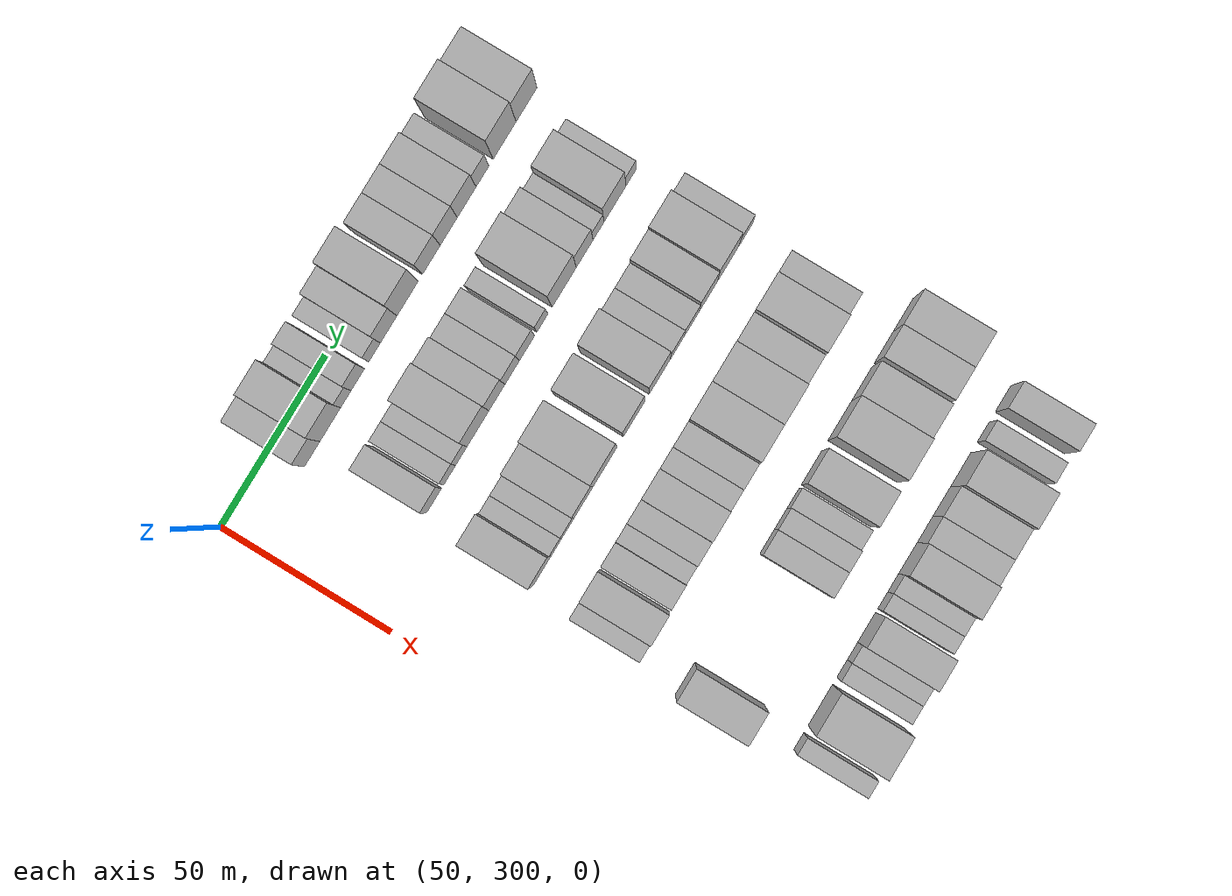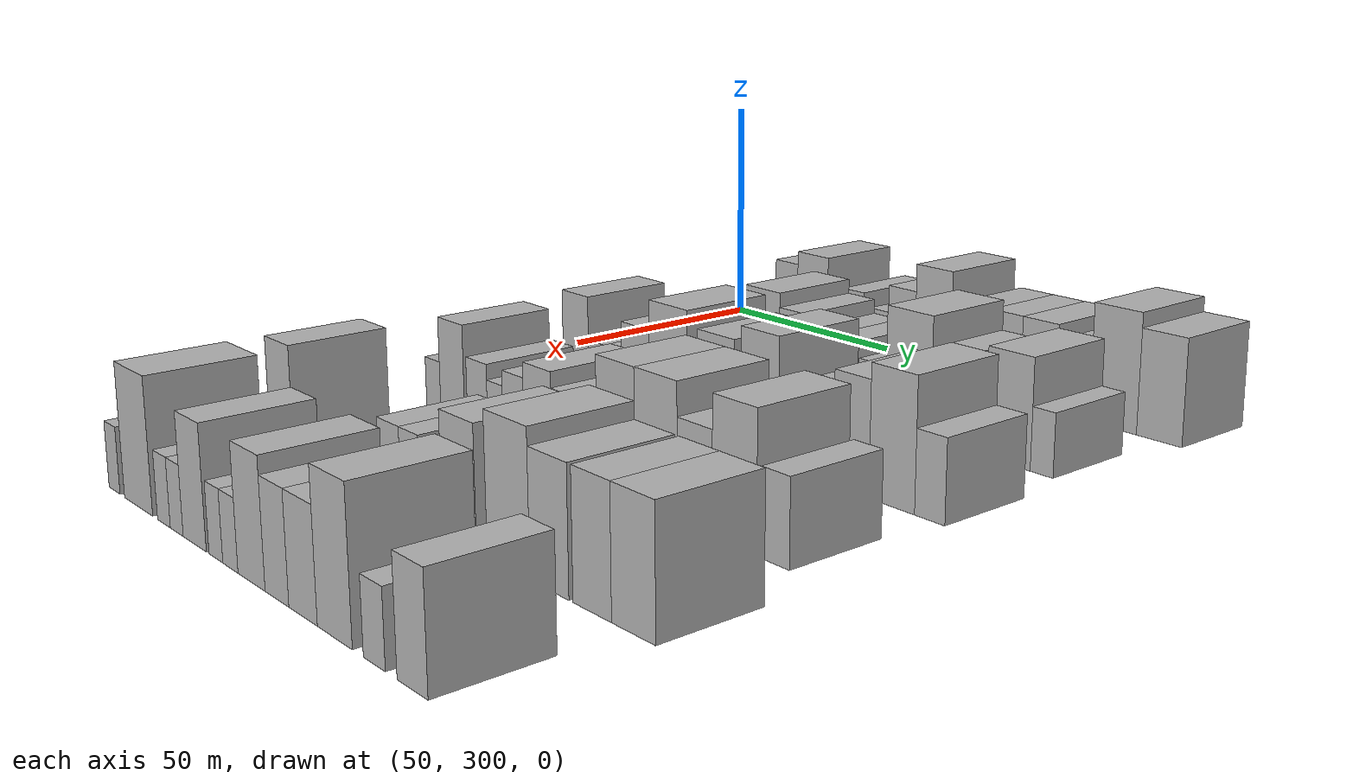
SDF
<sdf version="1.6">
 <world name="default">
  <model name="building_94">
   <static>1</static>
   <pose>50.0000 327.3562 0 0.000000 0.000000 0.000000</pose>
   <link name="link">
    <pose>0 0 9.00 0 0 0</pose>
    <collision name="collision"><geometry><box><size>20.0000 7.3040 18.0000</size></box></geometry></collision>
    <visual name="visual">
     <cast_shadows>0</cast_shadows>
     <geometry><box><size>20.0000 7.3040 18.0000</size></box></geometry>
     <material>
      <script>
       <uri>model://HANNAS_wall/materials/scripts</uri>
       <uri>model://HANNAS_wall/materials/textures</uri>
       <name>vrc/HANNAS_wall</name>
      </script>
     </material>
    </visual>
   </link>
  </model>
  <model name="building_95">
   <static>1</static>
   <pose>50.0000 335.9351 0 0.000000 0.000000 0.000000</pose>
   <link name="link">
    <pose>0 0 10.50 0 0 0</pose>
    <collision name="collision"><geometry><box><size>20.0000 9.8539 21.0000</size></box></geometry></collision>
    <visual name="visual">
     <cast_shadows>0</cast_shadows>
     <geometry><box><size>20.0000 9.8539 21.0000</size></box></geometry>
     <material>
      <script>
       <uri>model://HANNAS_wall/materials/scripts</uri>
       <uri>model://HANNAS_wall/materials/textures</uri>
       <name>vrc/HANNAS_wall</name>
      </script>
     </material>
    </visual>
   </link>
  </model>
  <model name="building_96">
   <static>1</static>
   <pose>50.0000 343.3470 0 0.000000 0.000000 0.000000</pose>
   <link name="link">
    <pose>0 0 6.00 0 0 0</pose>
    <collision name="collision"><geometry><box><size>20.0000 4.9699 12.0000</size></box></geometry></collision>
    <visual name="visual">
     <cast_shadows>0</cast_shadows>
     <geometry><box><size>20.0000 4.9699 12.0000</size></box></geometry>
     <material>
      <script>
       <uri>model://HANNAS_wall/materials/scripts</uri>
       <uri>model://HANNAS_wall/materials/textures</uri>
       <name>vrc/HANNAS_wall</name>
      </script>
     </material>
    </visual>
   </link>
  </model>
  <model name="building_97">
   <static>1</static>
   <pose>50.0000 349.0297 0 0.000000 0.000000 0.000000</pose>
   <link name="link">
    <pose>0 0 7.50 0 0 0</pose>
    <collision name="collision"><geometry><box><size>20.0000 6.3954 15.0000</size></box></geometry></collision>
    <visual name="visual">
     <cast_shadows>0</cast_shadows>
     <geometry><box><size>20.0000 6.3954 15.0000</size></box></geometry>
     <material>
      <script>
       <uri>model://HANNAS_wall/materials/scripts</uri>
       <uri>model://HANNAS_wall/materials/textures</uri>
       <name>vrc/HANNAS_wall</name>
      </script>
     </material>
    </visual>
   </link>
  </model>
  <model name="building_98">
   <static>1</static>
   <pose>50.0000 356.9638 0 0.000000 0.000000 0.000000</pose>
   <link name="link">
    <pose>0 0 6.00 0 0 0</pose>
    <collision name="collision"><geometry><box><size>20.0000 5.4728 12.0000</size></box></geometry></collision>
    <visual name="visual">
     <cast_shadows>0</cast_shadows>
     <geometry><box><size>20.0000 5.4728 12.0000</size></box></geometry>
     <material>
      <script>
       <uri>model://HANNAS_wall/materials/scripts</uri>
       <uri>model://HANNAS_wall/materials/textures</uri>
       <name>vrc/HANNAS_wall</name>
      </script>
     </material>
    </visual>
   </link>
  </model>
  <model name="building_99">
   <static>1</static>
   <pose>50.0000 363.6800 0 0.000000 0.000000 0.000000</pose>
   <link name="link">
    <pose>0 0 9.00 0 0 0</pose>
    <collision name="collision"><geometry><box><size>20.0000 7.9595 18.0000</size></box></geometry></collision>
    <visual name="visual">
     <cast_shadows>0</cast_shadows>
     <geometry><box><size>20.0000 7.9595 18.0000</size></box></geometry>
     <material>
      <script>
       <uri>model://HANNAS_wall/materials/scripts</uri>
       <uri>model://HANNAS_wall/materials/textures</uri>
       <name>vrc/HANNAS_wall</name>
      </script>
     </material>
    </visual>
   </link>
  </model>
  <model name="building_100">
   <static>1</static>
   <pose>50.0000 372.7301 0 0.000000 0.000000 0.000000</pose>
   <link name="link">
    <pose>0 0 12.00 0 0 0</pose>
    <collision name="collision"><geometry><box><size>20.0000 10.1408 24.0000</size></box></geometry></collision>
    <visual name="visual">
     <cast_shadows>0</cast_shadows>
     <geometry><box><size>20.0000 10.1408 24.0000</size></box></geometry>
     <material>
      <script>
       <uri>model://HANNAS_wall/materials/scripts</uri>
       <uri>model://HANNAS_wall/materials/textures</uri>
       <name>vrc/HANNAS_wall</name>
      </script>
     </material>
    </visual>
   </link>
  </model>
  <model name="building_101">
   <static>1</static>
   <pose>50.0000 384.0798 0 0.000000 0.000000 0.000000</pose>
   <link name="link">
    <pose>0 0 9.00 0 0 0</pose>
    <collision name="collision"><geometry><box><size>20.0000 8.5584 18.0000</size></box></geometry></collision>
    <visual name="visual">
     <cast_shadows>0</cast_shadows>
     <geometry><box><size>20.0000 8.5584 18.0000</size></box></geometry>
     <material>
      <script>
       <uri>model://HANNAS_wall/materials/scripts</uri>
       <uri>model://HANNAS_wall/materials/textures</uri>
       <name>vrc/HANNAS_wall</name>
      </script>
     </material>
    </visual>
   </link>
  </model>
  <model name="building_102">
   <static>1</static>
   <pose>50.0000 392.4596 0 0.000000 0.000000 0.000000</pose>
   <link name="link">
    <pose>0 0 9.00 0 0 0</pose>
    <collision name="collision"><geometry><box><size>20.0000 8.2013 18.0000</size></box></geometry></collision>
    <visual name="visual">
     <cast_shadows>0</cast_shadows>
     <geometry><box><size>20.0000 8.2013 18.0000</size></box></geometry>
     <material>
      <script>
       <uri>model://HANNAS_wall/materials/scripts</uri>
       <uri>model://HANNAS_wall/materials/textures</uri>
       <name>vrc/HANNAS_wall</name>
      </script>
     </material>
    </visual>
   </link>
  </model>
  <model name="building_103">
   <static>1</static>
   <pose>50.0000 401.0458 0 0.000000 0.000000 0.000000</pose>
   <link name="link">
    <pose>0 0 9.00 0 0 0</pose>
    <collision name="collision"><geometry><box><size>20.0000 8.9710 18.0000</size></box></geometry></collision>
    <visual name="visual">
     <cast_shadows>0</cast_shadows>
     <geometry><box><size>20.0000 8.9710 18.0000</size></box></geometry>
     <material>
      <script>
       <uri>model://HANNAS_wall/materials/scripts</uri>
       <uri>model://HANNAS_wall/materials/textures</uri>
       <name>vrc/HANNAS_wall</name>
      </script>
     </material>
    </visual>
   </link>
  </model>
  <model name="building_104">
   <static>1</static>
   <pose>50.0000 408.6296 0 0.000000 0.000000 0.000000</pose>
   <link name="link">
    <pose>0 0 7.50 0 0 0</pose>
    <collision name="collision"><geometry><box><size>20.0000 6.1966 15.0000</size></box></geometry></collision>
    <visual name="visual">
     <cast_shadows>0</cast_shadows>
     <geometry><box><size>20.0000 6.1966 15.0000</size></box></geometry>
     <material>
      <script>
       <uri>model://HANNAS_wall/materials/scripts</uri>
       <uri>model://HANNAS_wall/materials/textures</uri>
       <name>vrc/HANNAS_wall</name>
      </script>
     </material>
    </visual>
   </link>
  </model>
  <model name="building_105">
   <static>1</static>
   <pose>50.0000 419.2342 0 0.000000 0.000000 0.000000</pose>
   <link name="link">
    <pose>0 0 12.00 0 0 0</pose>
    <collision name="collision"><geometry><box><size>20.0000 11.0126 24.0000</size></box></geometry></collision>
    <visual name="visual">
     <cast_shadows>0</cast_shadows>
     <geometry><box><size>20.0000 11.0126 24.0000</size></box></geometry>
     <material>
      <script>
       <uri>model://HANNAS_wall/materials/scripts</uri>
       <uri>model://HANNAS_wall/materials/textures</uri>
       <name>vrc/HANNAS_wall</name>
      </script>
     </material>
    </visual>
   </link>
  </model>
  <model name="building_106">
   <static>1</static>
   <pose>50.0000 429.7818 0 0.000000 0.000000 0.000000</pose>
   <link name="link">
    <pose>0 0 10.50 0 0 0</pose>
    <collision name="collision"><geometry><box><size>20.0000 10.0826 21.0000</size></box></geometry></collision>
    <visual name="visual">
     <cast_shadows>0</cast_shadows>
     <geometry><box><size>20.0000 10.0826 21.0000</size></box></geometry>
     <material>
      <script>
       <uri>model://HANNAS_wall/materials/scripts</uri>
       <uri>model://HANNAS_wall/materials/textures</uri>
       <name>vrc/HANNAS_wall</name>
      </script>
     </material>
    </visual>
   </link>
  </model>
  <model name="building_215">
   <static>1</static>
   <pose>82.0000 333.2062 0 0.000000 0.000000 0.000000</pose>
   <link name="link">
    <pose>0 0 7.50 0 0 0</pose>
    <collision name="collision"><geometry><box><size>20.0000 7.2436 15.0000</size></box></geometry></collision>
    <visual name="visual">
     <cast_shadows>0</cast_shadows>
     <geometry><box><size>20.0000 7.2436 15.0000</size></box></geometry>
     <material>
      <script>
       <uri>model://HANNAS_wall/materials/scripts</uri>
       <uri>model://HANNAS_wall/materials/textures</uri>
       <name>vrc/HANNAS_wall</name>
      </script>
     </material>
    </visual>
   </link>
  </model>
  <model name="building_216">
   <static>1</static>
   <pose>82.0000 340.6351 0 0.000000 0.000000 0.000000</pose>
   <link name="link">
    <pose>0 0 6.00 0 0 0</pose>
    <collision name="collision"><geometry><box><size>20.0000 5.6140 12.0000</size></box></geometry></collision>
    <visual name="visual">
     <cast_shadows>0</cast_shadows>
     <geometry><box><size>20.0000 5.6140 12.0000</size></box></geometry>
     <material>
      <script>
       <uri>model://HANNAS_wall/materials/scripts</uri>
       <uri>model://HANNAS_wall/materials/textures</uri>
       <name>vrc/HANNAS_wall</name>
      </script>
     </material>
    </visual>
   </link>
  </model>
  <model name="building_217">
   <static>1</static>
   <pose>82.0000 346.1693 0 0.000000 0.000000 0.000000</pose>
   <link name="link">
    <pose>0 0 6.00 0 0 0</pose>
    <collision name="collision"><geometry><box><size>20.0000 5.4545 12.0000</size></box></geometry></collision>
    <visual name="visual">
     <cast_shadows>0</cast_shadows>
     <geometry><box><size>20.0000 5.4545 12.0000</size></box></geometry>
     <material>
      <script>
       <uri>model://HANNAS_wall/materials/scripts</uri>
       <uri>model://HANNAS_wall/materials/textures</uri>
       <name>vrc/HANNAS_wall</name>
      </script>
     </material>
    </visual>
   </link>
  </model>
  <model name="building_218">
   <static>1</static>
   <pose>82.0000 354.1108 0 0.000000 0.000000 0.000000</pose>
   <link name="link">
    <pose>0 0 10.50 0 0 0</pose>
    <collision name="collision"><geometry><box><size>20.0000 10.4285 21.0000</size></box></geometry></collision>
    <visual name="visual">
     <cast_shadows>0</cast_shadows>
     <geometry><box><size>20.0000 10.4285 21.0000</size></box></geometry>
     <material>
      <script>
       <uri>model://HANNAS_wall/materials/scripts</uri>
       <uri>model://HANNAS_wall/materials/textures</uri>
       <name>vrc/HANNAS_wall</name>
      </script>
     </material>
    </visual>
   </link>
  </model>
  <model name="building_219">
   <static>1</static>
   <pose>82.0000 363.1280 0 0.000000 0.000000 0.000000</pose>
   <link name="link">
    <pose>0 0 9.00 0 0 0</pose>
    <collision name="collision"><geometry><box><size>20.0000 7.6059 18.0000</size></box></geometry></collision>
    <visual name="visual">
     <cast_shadows>0</cast_shadows>
     <geometry><box><size>20.0000 7.6059 18.0000</size></box></geometry>
     <material>
      <script>
       <uri>model://HANNAS_wall/materials/scripts</uri>
       <uri>model://HANNAS_wall/materials/textures</uri>
       <name>vrc/HANNAS_wall</name>
      </script>
     </material>
    </visual>
   </link>
  </model>
  <model name="building_220">
   <static>1</static>
   <pose>82.0000 370.4144 0 0.000000 0.000000 0.000000</pose>
   <link name="link">
    <pose>0 0 7.50 0 0 0</pose>
    <collision name="collision"><geometry><box><size>20.0000 6.9669 15.0000</size></box></geometry></collision>
    <visual name="visual">
     <cast_shadows>0</cast_shadows>
     <geometry><box><size>20.0000 6.9669 15.0000</size></box></geometry>
     <material>
      <script>
       <uri>model://HANNAS_wall/materials/scripts</uri>
       <uri>model://HANNAS_wall/materials/textures</uri>
       <name>vrc/HANNAS_wall</name>
      </script>
     </material>
    </visual>
   </link>
  </model>
  <model name="building_221">
   <static>1</static>
   <pose>82.0000 377.5639 0 0.000000 0.000000 0.000000</pose>
   <link name="link">
    <pose>0 0 7.50 0 0 0</pose>
    <collision name="collision"><geometry><box><size>20.0000 7.3321 15.0000</size></box></geometry></collision>
    <visual name="visual">
     <cast_shadows>0</cast_shadows>
     <geometry><box><size>20.0000 7.3321 15.0000</size></box></geometry>
     <material>
      <script>
       <uri>model://HANNAS_wall/materials/scripts</uri>
       <uri>model://HANNAS_wall/materials/textures</uri>
       <name>vrc/HANNAS_wall</name>
      </script>
     </material>
    </visual>
   </link>
  </model>
  <model name="building_222">
   <static>1</static>
   <pose>82.0000 384.8917 0 0.000000 0.000000 0.000000</pose>
   <link name="link">
    <pose>0 0 6.00 0 0 0</pose>
    <collision name="collision"><geometry><box><size>20.0000 5.3235 12.0000</size></box></geometry></collision>
    <visual name="visual">
     <cast_shadows>0</cast_shadows>
     <geometry><box><size>20.0000 5.3235 12.0000</size></box></geometry>
     <material>
      <script>
       <uri>model://HANNAS_wall/materials/scripts</uri>
       <uri>model://HANNAS_wall/materials/textures</uri>
       <name>vrc/HANNAS_wall</name>
      </script>
     </material>
    </visual>
   </link>
  </model>
  <model name="building_223">
   <static>1</static>
   <pose>82.0000 395.3791 0 0.000000 0.000000 0.000000</pose>
   <link name="link">
    <pose>0 0 12.00 0 0 0</pose>
    <collision name="collision"><geometry><box><size>20.0000 11.6513 24.0000</size></box></geometry></collision>
    <visual name="visual">
     <cast_shadows>0</cast_shadows>
     <geometry><box><size>20.0000 11.6513 24.0000</size></box></geometry>
     <material>
      <script>
       <uri>model://HANNAS_wall/materials/scripts</uri>
       <uri>model://HANNAS_wall/materials/textures</uri>
       <name>vrc/HANNAS_wall</name>
      </script>
     </material>
    </visual>
   </link>
  </model>
  <model name="building_224">
   <static>1</static>
   <pose>82.0000 405.2343 0 0.000000 0.000000 0.000000</pose>
   <link name="link">
    <pose>0 0 9.00 0 0 0</pose>
    <collision name="collision"><geometry><box><size>20.0000 8.0591 18.0000</size></box></geometry></collision>
    <visual name="visual">
     <cast_shadows>0</cast_shadows>
     <geometry><box><size>20.0000 8.0591 18.0000</size></box></geometry>
     <material>
      <script>
       <uri>model://HANNAS_wall/materials/scripts</uri>
       <uri>model://HANNAS_wall/materials/textures</uri>
       <name>vrc/HANNAS_wall</name>
      </script>
     </material>
    </visual>
   </link>
  </model>
  <model name="building_225">
   <static>1</static>
   <pose>82.0000 411.9202 0 0.000000 0.000000 0.000000</pose>
   <link name="link">
    <pose>0 0 6.00 0 0 0</pose>
    <collision name="collision"><geometry><box><size>20.0000 5.3126 12.0000</size></box></geometry></collision>
    <visual name="visual">
     <cast_shadows>0</cast_shadows>
     <geometry><box><size>20.0000 5.3126 12.0000</size></box></geometry>
     <material>
      <script>
       <uri>model://HANNAS_wall/materials/scripts</uri>
       <uri>model://HANNAS_wall/materials/textures</uri>
       <name>vrc/HANNAS_wall</name>
      </script>
     </material>
    </visual>
   </link>
  </model>
  <model name="building_226">
   <static>1</static>
   <pose>82.0000 419.7956 0 0.000000 0.000000 0.000000</pose>
   <link name="link">
    <pose>0 0 10.50 0 0 0</pose>
    <collision name="collision"><geometry><box><size>20.0000 10.4383 21.0000</size></box></geometry></collision>
    <visual name="visual">
     <cast_shadows>0</cast_shadows>
     <geometry><box><size>20.0000 10.4383 21.0000</size></box></geometry>
     <material>
      <script>
       <uri>model://HANNAS_wall/materials/scripts</uri>
       <uri>model://HANNAS_wall/materials/textures</uri>
       <name>vrc/HANNAS_wall</name>
      </script>
     </material>
    </visual>
   </link>
  </model>
  <model name="building_227">
   <static>1</static>
   <pose>82.0000 427.5572 0 0.000000 0.000000 0.000000</pose>
   <link name="link">
    <pose>0 0 6.00 0 0 0</pose>
    <collision name="collision"><geometry><box><size>20.0000 5.0847 12.0000</size></box></geometry></collision>
    <visual name="visual">
     <cast_shadows>0</cast_shadows>
     <geometry><box><size>20.0000 5.0847 12.0000</size></box></geometry>
     <material>
      <script>
       <uri>model://HANNAS_wall/materials/scripts</uri>
       <uri>model://HANNAS_wall/materials/textures</uri>
       <name>vrc/HANNAS_wall</name>
      </script>
     </material>
    </visual>
   </link>
  </model>
  <model name="building_339">
   <static>1</static>
   <pose>114.0000 332.2036 0 0.000000 0.000000 0.000000</pose>
   <link name="link">
    <pose>0 0 10.50 0 0 0</pose>
    <collision name="collision"><geometry><box><size>20.0000 8.8132 21.0000</size></box></geometry></collision>
    <visual name="visual">
     <cast_shadows>0</cast_shadows>
     <geometry><box><size>20.0000 8.8132 21.0000</size></box></geometry>
     <material>
      <script>
       <uri>model://HANNAS_wall/materials/scripts</uri>
       <uri>model://HANNAS_wall/materials/textures</uri>
       <name>vrc/HANNAS_wall</name>
      </script>
     </material>
    </visual>
   </link>
  </model>
  <model name="building_340">
   <static>1</static>
   <pose>114.0000 339.2118 0 0.000000 0.000000 0.000000</pose>
   <link name="link">
    <pose>0 0 6.00 0 0 0</pose>
    <collision name="collision"><geometry><box><size>20.0000 5.2032 12.0000</size></box></geometry></collision>
    <visual name="visual">
     <cast_shadows>0</cast_shadows>
     <geometry><box><size>20.0000 5.2032 12.0000</size></box></geometry>
     <material>
      <script>
       <uri>model://HANNAS_wall/materials/scripts</uri>
       <uri>model://HANNAS_wall/materials/textures</uri>
       <name>vrc/HANNAS_wall</name>
      </script>
     </material>
    </visual>
   </link>
  </model>
  <model name="building_341">
   <static>1</static>
   <pose>114.0000 344.6830 0 0.000000 0.000000 0.000000</pose>
   <link name="link">
    <pose>0 0 6.00 0 0 0</pose>
    <collision name="collision"><geometry><box><size>20.0000 5.7393 12.0000</size></box></geometry></collision>
    <visual name="visual">
     <cast_shadows>0</cast_shadows>
     <geometry><box><size>20.0000 5.7393 12.0000</size></box></geometry>
     <material>
      <script>
       <uri>model://HANNAS_wall/materials/scripts</uri>
       <uri>model://HANNAS_wall/materials/textures</uri>
       <name>vrc/HANNAS_wall</name>
      </script>
     </material>
    </visual>
   </link>
  </model>
  <model name="building_342">
   <static>1</static>
   <pose>114.0000 352.0008 0 0.000000 0.000000 0.000000</pose>
   <link name="link">
    <pose>0 0 9.00 0 0 0</pose>
    <collision name="collision"><geometry><box><size>20.0000 8.8962 18.0000</size></box></geometry></collision>
    <visual name="visual">
     <cast_shadows>0</cast_shadows>
     <geometry><box><size>20.0000 8.8962 18.0000</size></box></geometry>
     <material>
      <script>
       <uri>model://HANNAS_wall/materials/scripts</uri>
       <uri>model://HANNAS_wall/materials/textures</uri>
       <name>vrc/HANNAS_wall</name>
      </script>
     </material>
    </visual>
   </link>
  </model>
  <model name="building_343">
   <static>1</static>
   <pose>114.0000 362.2920 0 0.000000 0.000000 0.000000</pose>
   <link name="link">
    <pose>0 0 12.00 0 0 0</pose>
    <collision name="collision"><geometry><box><size>20.0000 11.6862 24.0000</size></box></geometry></collision>
    <visual name="visual">
     <cast_shadows>0</cast_shadows>
     <geometry><box><size>20.0000 11.6862 24.0000</size></box></geometry>
     <material>
      <script>
       <uri>model://HANNAS_wall/materials/scripts</uri>
       <uri>model://HANNAS_wall/materials/textures</uri>
       <name>vrc/HANNAS_wall</name>
      </script>
     </material>
    </visual>
   </link>
  </model>
  <model name="building_344">
   <static>1</static>
   <pose>114.0000 376.3059 0 0.000000 0.000000 0.000000</pose>
   <link name="link">
    <pose>0 0 10.50 0 0 0</pose>
    <collision name="collision"><geometry><box><size>20.0000 10.3418 21.0000</size></box></geometry></collision>
    <visual name="visual">
     <cast_shadows>0</cast_shadows>
     <geometry><box><size>20.0000 10.3418 21.0000</size></box></geometry>
     <material>
      <script>
       <uri>model://HANNAS_wall/materials/scripts</uri>
       <uri>model://HANNAS_wall/materials/textures</uri>
       <name>vrc/HANNAS_wall</name>
      </script>
     </material>
    </visual>
   </link>
  </model>
  <model name="building_345">
   <static>1</static>
   <pose>114.0000 388.5525 0 0.000000 0.000000 0.000000</pose>
   <link name="link">
    <pose>0 0 12.00 0 0 0</pose>
    <collision name="collision"><geometry><box><size>20.0000 10.1513 24.0000</size></box></geometry></collision>
    <visual name="visual">
     <cast_shadows>0</cast_shadows>
     <geometry><box><size>20.0000 10.1513 24.0000</size></box></geometry>
     <material>
      <script>
       <uri>model://HANNAS_wall/materials/scripts</uri>
       <uri>model://HANNAS_wall/materials/textures</uri>
       <name>vrc/HANNAS_wall</name>
      </script>
     </material>
    </visual>
   </link>
  </model>
  <model name="building_346">
   <static>1</static>
   <pose>114.0000 397.0515 0 0.000000 0.000000 0.000000</pose>
   <link name="link">
    <pose>0 0 7.50 0 0 0</pose>
    <collision name="collision"><geometry><box><size>20.0000 6.8467 15.0000</size></box></geometry></collision>
    <visual name="visual">
     <cast_shadows>0</cast_shadows>
     <geometry><box><size>20.0000 6.8467 15.0000</size></box></geometry>
     <material>
      <script>
       <uri>model://HANNAS_wall/materials/scripts</uri>
       <uri>model://HANNAS_wall/materials/textures</uri>
       <name>vrc/HANNAS_wall</name>
      </script>
     </material>
    </visual>
   </link>
  </model>
  <model name="building_347">
   <static>1</static>
   <pose>114.0000 404.0512 0 0.000000 0.000000 0.000000</pose>
   <link name="link">
    <pose>0 0 7.50 0 0 0</pose>
    <collision name="collision"><geometry><box><size>20.0000 7.1526 15.0000</size></box></geometry></collision>
    <visual name="visual">
     <cast_shadows>0</cast_shadows>
     <geometry><box><size>20.0000 7.1526 15.0000</size></box></geometry>
     <material>
      <script>
       <uri>model://HANNAS_wall/materials/scripts</uri>
       <uri>model://HANNAS_wall/materials/textures</uri>
       <name>vrc/HANNAS_wall</name>
      </script>
     </material>
    </visual>
   </link>
  </model>
  <model name="building_348">
   <static>1</static>
   <pose>114.0000 411.9295 0 0.000000 0.000000 0.000000</pose>
   <link name="link">
    <pose>0 0 10.50 0 0 0</pose>
    <collision name="collision"><geometry><box><size>20.0000 8.6041 21.0000</size></box></geometry></collision>
    <visual name="visual">
     <cast_shadows>0</cast_shadows>
     <geometry><box><size>20.0000 8.6041 21.0000</size></box></geometry>
     <material>
      <script>
       <uri>model://HANNAS_wall/materials/scripts</uri>
       <uri>model://HANNAS_wall/materials/textures</uri>
       <name>vrc/HANNAS_wall</name>
      </script>
     </material>
    </visual>
   </link>
  </model>
  <model name="building_349">
   <static>1</static>
   <pose>114.0000 421.4678 0 0.000000 0.000000 0.000000</pose>
   <link name="link">
    <pose>0 0 12.00 0 0 0</pose>
    <collision name="collision"><geometry><box><size>20.0000 10.4725 24.0000</size></box></geometry></collision>
    <visual name="visual">
     <cast_shadows>0</cast_shadows>
     <geometry><box><size>20.0000 10.4725 24.0000</size></box></geometry>
     <material>
      <script>
       <uri>model://HANNAS_wall/materials/scripts</uri>
       <uri>model://HANNAS_wall/materials/textures</uri>
       <name>vrc/HANNAS_wall</name>
      </script>
     </material>
    </visual>
   </link>
  </model>
  <model name="building_350">
   <static>1</static>
   <pose>114.0000 430.0268 0 0.000000 0.000000 0.000000</pose>
   <link name="link">
    <pose>0 0 7.50 0 0 0</pose>
    <collision name="collision"><geometry><box><size>20.0000 6.6454 15.0000</size></box></geometry></collision>
    <visual name="visual">
     <cast_shadows>0</cast_shadows>
     <geometry><box><size>20.0000 6.6454 15.0000</size></box></geometry>
     <material>
      <script>
       <uri>model://HANNAS_wall/materials/scripts</uri>
       <uri>model://HANNAS_wall/materials/textures</uri>
       <name>vrc/HANNAS_wall</name>
      </script>
     </material>
    </visual>
   </link>
  </model>
  <model name="building_460">
   <static>1</static>
   <pose>146.0000 328.7867 0 0.000000 0.000000 0.000000</pose>
   <link name="link">
    <pose>0 0 6.00 0 0 0</pose>
    <collision name="collision"><geometry><box><size>20.0000 5.2282 12.0000</size></box></geometry></collision>
    <visual name="visual">
     <cast_shadows>0</cast_shadows>
     <geometry><box><size>20.0000 5.2282 12.0000</size></box></geometry>
     <material>
      <script>
       <uri>model://HANNAS_wall/materials/scripts</uri>
       <uri>model://HANNAS_wall/materials/textures</uri>
       <name>vrc/HANNAS_wall</name>
      </script>
     </material>
    </visual>
   </link>
  </model>
  <model name="building_461">
   <static>1</static>
   <pose>146.0000 335.7134 0 0.000000 0.000000 0.000000</pose>
   <link name="link">
    <pose>0 0 10.50 0 0 0</pose>
    <collision name="collision"><geometry><box><size>20.0000 8.6253 21.0000</size></box></geometry></collision>
    <visual name="visual">
     <cast_shadows>0</cast_shadows>
     <geometry><box><size>20.0000 8.6253 21.0000</size></box></geometry>
     <material>
      <script>
       <uri>model://HANNAS_wall/materials/scripts</uri>
       <uri>model://HANNAS_wall/materials/textures</uri>
       <name>vrc/HANNAS_wall</name>
      </script>
     </material>
    </visual>
   </link>
  </model>
  <model name="building_462">
   <static>1</static>
   <pose>146.0000 344.5114 0 0.000000 0.000000 0.000000</pose>
   <link name="link">
    <pose>0 0 7.50 0 0 0</pose>
    <collision name="collision"><geometry><box><size>20.0000 6.9705 15.0000</size></box></geometry></collision>
    <visual name="visual">
     <cast_shadows>0</cast_shadows>
     <geometry><box><size>20.0000 6.9705 15.0000</size></box></geometry>
     <material>
      <script>
       <uri>model://HANNAS_wall/materials/scripts</uri>
       <uri>model://HANNAS_wall/materials/textures</uri>
       <name>vrc/HANNAS_wall</name>
      </script>
     </material>
    </visual>
   </link>
  </model>
  <model name="building_463">
   <static>1</static>
   <pose>146.0000 350.6129 0 0.000000 0.000000 0.000000</pose>
   <link name="link">
    <pose>0 0 6.00 0 0 0</pose>
    <collision name="collision"><geometry><box><size>20.0000 5.2325 12.0000</size></box></geometry></collision>
    <visual name="visual">
     <cast_shadows>0</cast_shadows>
     <geometry><box><size>20.0000 5.2325 12.0000</size></box></geometry>
     <material>
      <script>
       <uri>model://HANNAS_wall/materials/scripts</uri>
       <uri>model://HANNAS_wall/materials/textures</uri>
       <name>vrc/HANNAS_wall</name>
      </script>
     </material>
    </visual>
   </link>
  </model>
  <model name="building_464">
   <static>1</static>
   <pose>146.0000 356.6269 0 0.000000 0.000000 0.000000</pose>
   <link name="link">
    <pose>0 0 7.50 0 0 0</pose>
    <collision name="collision"><geometry><box><size>20.0000 6.7956 15.0000</size></box></geometry></collision>
    <visual name="visual">
     <cast_shadows>0</cast_shadows>
     <geometry><box><size>20.0000 6.7956 15.0000</size></box></geometry>
     <material>
      <script>
       <uri>model://HANNAS_wall/materials/scripts</uri>
       <uri>model://HANNAS_wall/materials/textures</uri>
       <name>vrc/HANNAS_wall</name>
      </script>
     </material>
    </visual>
   </link>
  </model>
  <model name="building_465">
   <static>1</static>
   <pose>146.0000 364.3414 0 0.000000 0.000000 0.000000</pose>
   <link name="link">
    <pose>0 0 9.00 0 0 0</pose>
    <collision name="collision"><geometry><box><size>20.0000 8.6335 18.0000</size></box></geometry></collision>
    <visual name="visual">
     <cast_shadows>0</cast_shadows>
     <geometry><box><size>20.0000 8.6335 18.0000</size></box></geometry>
     <material>
      <script>
       <uri>model://HANNAS_wall/materials/scripts</uri>
       <uri>model://HANNAS_wall/materials/textures</uri>
       <name>vrc/HANNAS_wall</name>
      </script>
     </material>
    </visual>
   </link>
  </model>
  <model name="building_466">
   <static>1</static>
   <pose>146.0000 371.7319 0 0.000000 0.000000 0.000000</pose>
   <link name="link">
    <pose>0 0 7.50 0 0 0</pose>
    <collision name="collision"><geometry><box><size>20.0000 6.1474 15.0000</size></box></geometry></collision>
    <visual name="visual">
     <cast_shadows>0</cast_shadows>
     <geometry><box><size>20.0000 6.1474 15.0000</size></box></geometry>
     <material>
      <script>
       <uri>model://HANNAS_wall/materials/scripts</uri>
       <uri>model://HANNAS_wall/materials/textures</uri>
       <name>vrc/HANNAS_wall</name>
      </script>
     </material>
    </visual>
   </link>
  </model>
  <model name="building_467">
   <static>1</static>
   <pose>146.0000 378.4906 0 0.000000 0.000000 0.000000</pose>
   <link name="link">
    <pose>0 0 7.50 0 0 0</pose>
    <collision name="collision"><geometry><box><size>20.0000 7.3700 15.0000</size></box></geometry></collision>
    <visual name="visual">
     <cast_shadows>0</cast_shadows>
     <geometry><box><size>20.0000 7.3700 15.0000</size></box></geometry>
     <material>
      <script>
       <uri>model://HANNAS_wall/materials/scripts</uri>
       <uri>model://HANNAS_wall/materials/textures</uri>
       <name>vrc/HANNAS_wall</name>
      </script>
     </material>
    </visual>
   </link>
  </model>
  <model name="building_468">
   <static>1</static>
   <pose>146.0000 387.4535 0 0.000000 0.000000 0.000000</pose>
   <link name="link">
    <pose>0 0 12.00 0 0 0</pose>
    <collision name="collision"><geometry><box><size>20.0000 10.5559 24.0000</size></box></geometry></collision>
    <visual name="visual">
     <cast_shadows>0</cast_shadows>
     <geometry><box><size>20.0000 10.5559 24.0000</size></box></geometry>
     <material>
      <script>
       <uri>model://HANNAS_wall/materials/scripts</uri>
       <uri>model://HANNAS_wall/materials/textures</uri>
       <name>vrc/HANNAS_wall</name>
      </script>
     </material>
    </visual>
   </link>
  </model>
  <model name="building_469">
   <static>1</static>
   <pose>146.0000 398.3339 0 0.000000 0.000000 0.000000</pose>
   <link name="link">
    <pose>0 0 12.00 0 0 0</pose>
    <collision name="collision"><geometry><box><size>20.0000 11.2049 24.0000</size></box></geometry></collision>
    <visual name="visual">
     <cast_shadows>0</cast_shadows>
     <geometry><box><size>20.0000 11.2049 24.0000</size></box></geometry>
     <material>
      <script>
       <uri>model://HANNAS_wall/materials/scripts</uri>
       <uri>model://HANNAS_wall/materials/textures</uri>
       <name>vrc/HANNAS_wall</name>
      </script>
     </material>
    </visual>
   </link>
  </model>
  <model name="building_470">
   <static>1</static>
   <pose>146.0000 408.3086 0 0.000000 0.000000 0.000000</pose>
   <link name="link">
    <pose>0 0 9.00 0 0 0</pose>
    <collision name="collision"><geometry><box><size>20.0000 8.7446 18.0000</size></box></geometry></collision>
    <visual name="visual">
     <cast_shadows>0</cast_shadows>
     <geometry><box><size>20.0000 8.7446 18.0000</size></box></geometry>
     <material>
      <script>
       <uri>model://HANNAS_wall/materials/scripts</uri>
       <uri>model://HANNAS_wall/materials/textures</uri>
       <name>vrc/HANNAS_wall</name>
      </script>
     </material>
    </visual>
   </link>
  </model>
  <model name="building_471">
   <static>1</static>
   <pose>146.0000 417.9473 0 0.000000 0.000000 0.000000</pose>
   <link name="link">
    <pose>0 0 12.00 0 0 0</pose>
    <collision name="collision"><geometry><box><size>20.0000 10.5327 24.0000</size></box></geometry></collision>
    <visual name="visual">
     <cast_shadows>0</cast_shadows>
     <geometry><box><size>20.0000 10.5327 24.0000</size></box></geometry>
     <material>
      <script>
       <uri>model://HANNAS_wall/materials/scripts</uri>
       <uri>model://HANNAS_wall/materials/textures</uri>
       <name>vrc/HANNAS_wall</name>
      </script>
     </material>
    </visual>
   </link>
  </model>
  <model name="building_472">
   <static>1</static>
   <pose>146.0000 427.4197 0 0.000000 0.000000 0.000000</pose>
   <link name="link">
    <pose>0 0 7.50 0 0 0</pose>
    <collision name="collision"><geometry><box><size>20.0000 6.4121 15.0000</size></box></geometry></collision>
    <visual name="visual">
     <cast_shadows>0</cast_shadows>
     <geometry><box><size>20.0000 6.4121 15.0000</size></box></geometry>
     <material>
      <script>
       <uri>model://HANNAS_wall/materials/scripts</uri>
       <uri>model://HANNAS_wall/materials/textures</uri>
       <name>vrc/HANNAS_wall</name>
      </script>
     </material>
    </visual>
   </link>
  </model>
  <model name="building_581">
   <static>1</static>
   <pose>178.0000 327.9066 0 0.000000 0.000000 0.000000</pose>
   <link name="link">
    <pose>0 0 10.50 0 0 0</pose>
    <collision name="collision"><geometry><box><size>20.0000 9.2812 21.0000</size></box></geometry></collision>
    <visual name="visual">
     <cast_shadows>0</cast_shadows>
     <geometry><box><size>20.0000 9.2812 21.0000</size></box></geometry>
     <material>
      <script>
       <uri>model://HANNAS_wall/materials/scripts</uri>
       <uri>model://HANNAS_wall/materials/textures</uri>
       <name>vrc/HANNAS_wall</name>
      </script>
     </material>
    </visual>
   </link>
  </model>
  <model name="building_582">
   <static>1</static>
   <pose>178.0000 367.3226 0 0.000000 0.000000 0.000000</pose>
   <link name="link">
    <pose>0 0 7.50 0 0 0</pose>
    <collision name="collision"><geometry><box><size>20.0000 7.1836 15.0000</size></box></geometry></collision>
    <visual name="visual">
     <cast_shadows>0</cast_shadows>
     <geometry><box><size>20.0000 7.1836 15.0000</size></box></geometry>
     <material>
      <script>
       <uri>model://HANNAS_wall/materials/scripts</uri>
       <uri>model://HANNAS_wall/materials/textures</uri>
       <name>vrc/HANNAS_wall</name>
      </script>
     </material>
    </visual>
   </link>
  </model>
  <model name="building_583">
   <static>1</static>
   <pose>178.0000 373.9609 0 0.000000 0.000000 0.000000</pose>
   <link name="link">
    <pose>0 0 7.50 0 0 0</pose>
    <collision name="collision"><geometry><box><size>20.0000 6.0932 15.0000</size></box></geometry></collision>
    <visual name="visual">
     <cast_shadows>0</cast_shadows>
     <geometry><box><size>20.0000 6.0932 15.0000</size></box></geometry>
     <material>
      <script>
       <uri>model://HANNAS_wall/materials/scripts</uri>
       <uri>model://HANNAS_wall/materials/textures</uri>
       <name>vrc/HANNAS_wall</name>
      </script>
     </material>
    </visual>
   </link>
  </model>
  <model name="building_584">
   <static>1</static>
   <pose>178.0000 379.8756 0 0.000000 0.000000 0.000000</pose>
   <link name="link">
    <pose>0 0 6.00 0 0 0</pose>
    <collision name="collision"><geometry><box><size>20.0000 5.7362 12.0000</size></box></geometry></collision>
    <visual name="visual">
     <cast_shadows>0</cast_shadows>
     <geometry><box><size>20.0000 5.7362 12.0000</size></box></geometry>
     <material>
      <script>
       <uri>model://HANNAS_wall/materials/scripts</uri>
       <uri>model://HANNAS_wall/materials/textures</uri>
       <name>vrc/HANNAS_wall</name>
      </script>
     </material>
    </visual>
   </link>
  </model>
  <model name="building_585">
   <static>1</static>
   <pose>178.0000 388.6903 0 0.000000 0.000000 0.000000</pose>
   <link name="link">
    <pose>0 0 10.50 0 0 0</pose>
    <collision name="collision"><geometry><box><size>20.0000 9.8932 21.0000</size></box></geometry></collision>
    <visual name="visual">
     <cast_shadows>0</cast_shadows>
     <geometry><box><size>20.0000 9.8932 21.0000</size></box></geometry>
     <material>
      <script>
       <uri>model://HANNAS_wall/materials/scripts</uri>
       <uri>model://HANNAS_wall/materials/textures</uri>
       <name>vrc/HANNAS_wall</name>
      </script>
     </material>
    </visual>
   </link>
  </model>
  <model name="building_586">
   <static>1</static>
   <pose>178.0000 402.4133 0 0.000000 0.000000 0.000000</pose>
   <link name="link">
    <pose>0 0 12.00 0 0 0</pose>
    <collision name="collision"><geometry><box><size>20.0000 11.5527 24.0000</size></box></geometry></collision>
    <visual name="visual">
     <cast_shadows>0</cast_shadows>
     <geometry><box><size>20.0000 11.5527 24.0000</size></box></geometry>
     <material>
      <script>
       <uri>model://HANNAS_wall/materials/scripts</uri>
       <uri>model://HANNAS_wall/materials/textures</uri>
       <name>vrc/HANNAS_wall</name>
      </script>
     </material>
    </visual>
   </link>
  </model>
  <model name="building_587">
   <static>1</static>
   <pose>178.0000 413.1306 0 0.000000 0.000000 0.000000</pose>
   <link name="link">
    <pose>0 0 10.50 0 0 0</pose>
    <collision name="collision"><geometry><box><size>20.0000 9.8819 21.0000</size></box></geometry></collision>
    <visual name="visual">
     <cast_shadows>0</cast_shadows>
     <geometry><box><size>20.0000 9.8819 21.0000</size></box></geometry>
     <material>
      <script>
       <uri>model://HANNAS_wall/materials/scripts</uri>
       <uri>model://HANNAS_wall/materials/textures</uri>
       <name>vrc/HANNAS_wall</name>
      </script>
     </material>
    </visual>
   </link>
  </model>
  <model name="building_588">
   <static>1</static>
   <pose>178.0000 423.6630 0 0.000000 0.000000 0.000000</pose>
   <link name="link">
    <pose>0 0 10.50 0 0 0</pose>
    <collision name="collision"><geometry><box><size>20.0000 9.1829 21.0000</size></box></geometry></collision>
    <visual name="visual">
     <cast_shadows>0</cast_shadows>
     <geometry><box><size>20.0000 9.1829 21.0000</size></box></geometry>
     <material>
      <script>
       <uri>model://HANNAS_wall/materials/scripts</uri>
       <uri>model://HANNAS_wall/materials/textures</uri>
       <name>vrc/HANNAS_wall</name>
      </script>
     </material>
    </visual>
   </link>
  </model>
  <model name="building_589">
   <static>1</static>
   <pose>178.0000 433.2122 0 0.000000 0.000000 0.000000</pose>
   <link name="link">
    <pose>0 0 10.50 0 0 0</pose>
    <collision name="collision"><geometry><box><size>20.0000 9.9154 21.0000</size></box></geometry></collision>
    <visual name="visual">
     <cast_shadows>0</cast_shadows>
     <geometry><box><size>20.0000 9.9154 21.0000</size></box></geometry>
     <material>
      <script>
       <uri>model://HANNAS_wall/materials/scripts</uri>
       <uri>model://HANNAS_wall/materials/textures</uri>
       <name>vrc/HANNAS_wall</name>
      </script>
     </material>
    </visual>
   </link>
  </model>
  <model name="building_697">
   <static>1</static>
   <pose>210.0000 329.2765 0 0.000000 0.000000 0.000000</pose>
   <link name="link">
    <pose>0 0 6.00 0 0 0</pose>
    <collision name="collision"><geometry><box><size>20.0000 4.8311 12.0000</size></box></geometry></collision>
    <visual name="visual">
     <cast_shadows>0</cast_shadows>
     <geometry><box><size>20.0000 4.8311 12.0000</size></box></geometry>
     <material>
      <script>
       <uri>model://HANNAS_wall/materials/scripts</uri>
       <uri>model://HANNAS_wall/materials/textures</uri>
       <name>vrc/HANNAS_wall</name>
      </script>
     </material>
    </visual>
   </link>
  </model>
  <model name="building_698">
   <static>1</static>
   <pose>210.0000 339.6131 0 0.000000 0.000000 0.000000</pose>
   <link name="link">
    <pose>0 0 12.00 0 0 0</pose>
    <collision name="collision"><geometry><box><size>20.0000 11.8421 24.0000</size></box></geometry></collision>
    <visual name="visual">
     <cast_shadows>0</cast_shadows>
     <geometry><box><size>20.0000 11.8421 24.0000</size></box></geometry>
     <material>
      <script>
       <uri>model://HANNAS_wall/materials/scripts</uri>
       <uri>model://HANNAS_wall/materials/textures</uri>
       <name>vrc/HANNAS_wall</name>
      </script>
     </material>
    </visual>
   </link>
  </model>
  <model name="building_699">
   <static>1</static>
   <pose>210.0000 350.0742 0 0.000000 0.000000 0.000000</pose>
   <link name="link">
    <pose>0 0 6.00 0 0 0</pose>
    <collision name="collision"><geometry><box><size>20.0000 5.0801 12.0000</size></box></geometry></collision>
    <visual name="visual">
     <cast_shadows>0</cast_shadows>
     <geometry><box><size>20.0000 5.0801 12.0000</size></box></geometry>
     <material>
      <script>
       <uri>model://HANNAS_wall/materials/scripts</uri>
       <uri>model://HANNAS_wall/materials/textures</uri>
       <name>vrc/HANNAS_wall</name>
      </script>
     </material>
    </visual>
   </link>
  </model>
  <model name="building_700">
   <static>1</static>
   <pose>210.0000 355.1152 0 0.000000 0.000000 0.000000</pose>
   <link name="link">
    <pose>0 0 6.00 0 0 0</pose>
    <collision name="collision"><geometry><box><size>20.0000 5.0021 12.0000</size></box></geometry></collision>
    <visual name="visual">
     <cast_shadows>0</cast_shadows>
     <geometry><box><size>20.0000 5.0021 12.0000</size></box></geometry>
     <material>
      <script>
       <uri>model://HANNAS_wall/materials/scripts</uri>
       <uri>model://HANNAS_wall/materials/textures</uri>
       <name>vrc/HANNAS_wall</name>
      </script>
     </material>
    </visual>
   </link>
  </model>
  <model name="building_701">
   <static>1</static>
   <pose>210.0000 361.9274 0 0.000000 0.000000 0.000000</pose>
   <link name="link">
    <pose>0 0 10.50 0 0 0</pose>
    <collision name="collision"><geometry><box><size>20.0000 8.6222 21.0000</size></box></geometry></collision>
    <visual name="visual">
     <cast_shadows>0</cast_shadows>
     <geometry><box><size>20.0000 8.6222 21.0000</size></box></geometry>
     <material>
      <script>
       <uri>model://HANNAS_wall/materials/scripts</uri>
       <uri>model://HANNAS_wall/materials/textures</uri>
       <name>vrc/HANNAS_wall</name>
      </script>
     </material>
    </visual>
   </link>
  </model>
  <model name="building_702">
   <static>1</static>
   <pose>210.0000 369.7017 0 0.000000 0.000000 0.000000</pose>
   <link name="link">
    <pose>0 0 6.00 0 0 0</pose>
    <collision name="collision"><geometry><box><size>20.0000 4.9265 12.0000</size></box></geometry></collision>
    <visual name="visual">
     <cast_shadows>0</cast_shadows>
     <geometry><box><size>20.0000 4.9265 12.0000</size></box></geometry>
     <material>
      <script>
       <uri>model://HANNAS_wall/materials/scripts</uri>
       <uri>model://HANNAS_wall/materials/textures</uri>
       <name>vrc/HANNAS_wall</name>
      </script>
     </material>
    </visual>
   </link>
  </model>
  <model name="building_703">
   <static>1</static>
   <pose>210.0000 374.7966 0 0.000000 0.000000 0.000000</pose>
   <link name="link">
    <pose>0 0 6.00 0 0 0</pose>
    <collision name="collision"><geometry><box><size>20.0000 5.2633 12.0000</size></box></geometry></collision>
    <visual name="visual">
     <cast_shadows>0</cast_shadows>
     <geometry><box><size>20.0000 5.2633 12.0000</size></box></geometry>
     <material>
      <script>
       <uri>model://HANNAS_wall/materials/scripts</uri>
       <uri>model://HANNAS_wall/materials/textures</uri>
       <name>vrc/HANNAS_wall</name>
      </script>
     </material>
    </visual>
   </link>
  </model>
  <model name="building_704">
   <static>1</static>
   <pose>210.0000 381.9456 0 0.000000 0.000000 0.000000</pose>
   <link name="link">
    <pose>0 0 10.50 0 0 0</pose>
    <collision name="collision"><geometry><box><size>20.0000 9.0346 21.0000</size></box></geometry></collision>
    <visual name="visual">
     <cast_shadows>0</cast_shadows>
     <geometry><box><size>20.0000 9.0346 21.0000</size></box></geometry>
     <material>
      <script>
       <uri>model://HANNAS_wall/materials/scripts</uri>
       <uri>model://HANNAS_wall/materials/textures</uri>
       <name>vrc/HANNAS_wall</name>
      </script>
     </material>
    </visual>
   </link>
  </model>
  <model name="building_705">
   <static>1</static>
   <pose>210.0000 390.2137 0 0.000000 0.000000 0.000000</pose>
   <link name="link">
    <pose>0 0 9.00 0 0 0</pose>
    <collision name="collision"><geometry><box><size>20.0000 7.5017 18.0000</size></box></geometry></collision>
    <visual name="visual">
     <cast_shadows>0</cast_shadows>
     <geometry><box><size>20.0000 7.5017 18.0000</size></box></geometry>
     <material>
      <script>
       <uri>model://HANNAS_wall/materials/scripts</uri>
       <uri>model://HANNAS_wall/materials/textures</uri>
       <name>vrc/HANNAS_wall</name>
      </script>
     </material>
    </visual>
   </link>
  </model>
  <model name="building_706">
   <static>1</static>
   <pose>210.0000 398.2620 0 0.000000 0.000000 0.000000</pose>
   <link name="link">
    <pose>0 0 9.00 0 0 0</pose>
    <collision name="collision"><geometry><box><size>20.0000 8.5948 18.0000</size></box></geometry></collision>
    <visual name="visual">
     <cast_shadows>0</cast_shadows>
     <geometry><box><size>20.0000 8.5948 18.0000</size></box></geometry>
     <material>
      <script>
       <uri>model://HANNAS_wall/materials/scripts</uri>
       <uri>model://HANNAS_wall/materials/textures</uri>
       <name>vrc/HANNAS_wall</name>
      </script>
     </material>
    </visual>
   </link>
  </model>
  <model name="building_707">
   <static>1</static>
   <pose>210.0000 407.5195 0 0.000000 0.000000 0.000000</pose>
   <link name="link">
    <pose>0 0 12.00 0 0 0</pose>
    <collision name="collision"><geometry><box><size>20.0000 9.9203 24.0000</size></box></geometry></collision>
    <visual name="visual">
     <cast_shadows>0</cast_shadows>
     <geometry><box><size>20.0000 9.9203 24.0000</size></box></geometry>
     <material>
      <script>
       <uri>model://HANNAS_wall/materials/scripts</uri>
       <uri>model://HANNAS_wall/materials/textures</uri>
       <name>vrc/HANNAS_wall</name>
      </script>
     </material>
    </visual>
   </link>
  </model>
  <model name="building_708">
   <static>1</static>
   <pose>210.0000 418.3920 0 0.000000 0.000000 0.000000</pose>
   <link name="link">
    <pose>0 0 6.00 0 0 0</pose>
    <collision name="collision"><geometry><box><size>20.0000 5.8245 12.0000</size></box></geometry></collision>
    <visual name="visual">
     <cast_shadows>0</cast_shadows>
     <geometry><box><size>20.0000 5.8245 12.0000</size></box></geometry>
     <material>
      <script>
       <uri>model://HANNAS_wall/materials/scripts</uri>
       <uri>model://HANNAS_wall/materials/textures</uri>
       <name>vrc/HANNAS_wall</name>
      </script>
     </material>
    </visual>
   </link>
  </model>
  <model name="building_709">
   <static>1</static>
   <pose>210.0000 428.1436 0 0.000000 0.000000 0.000000</pose>
   <link name="link">
    <pose>0 0 9.00 0 0 0</pose>
    <collision name="collision"><geometry><box><size>20.0000 7.6787 18.0000</size></box></geometry></collision>
    <visual name="visual">
     <cast_shadows>0</cast_shadows>
     <geometry><box><size>20.0000 7.6787 18.0000</size></box></geometry>
     <material>
      <script>
       <uri>model://HANNAS_wall/materials/scripts</uri>
       <uri>model://HANNAS_wall/materials/textures</uri>
       <name>vrc/HANNAS_wall</name>
      </script>
     </material>
    </visual>
   </link>
  </model>
 </world>
</sdf>
